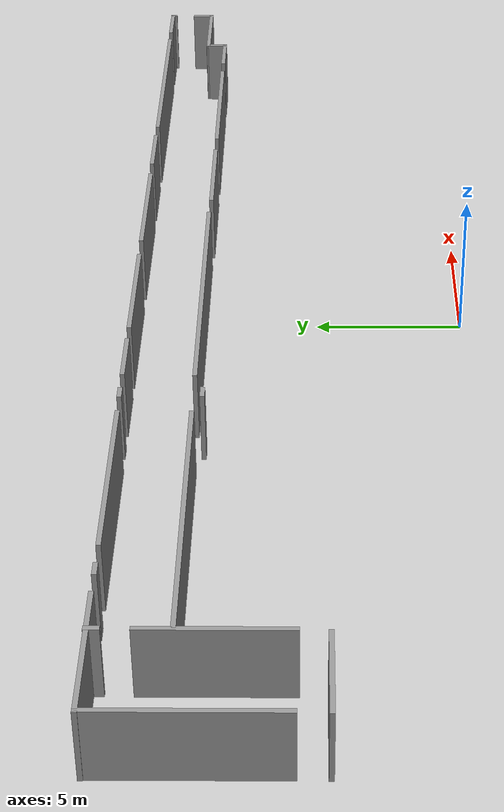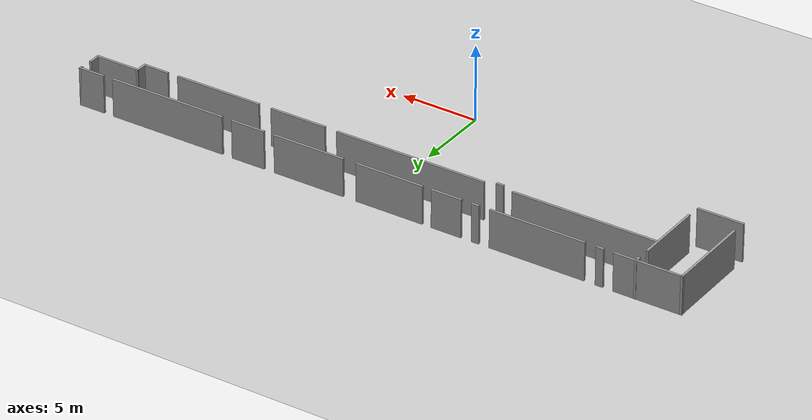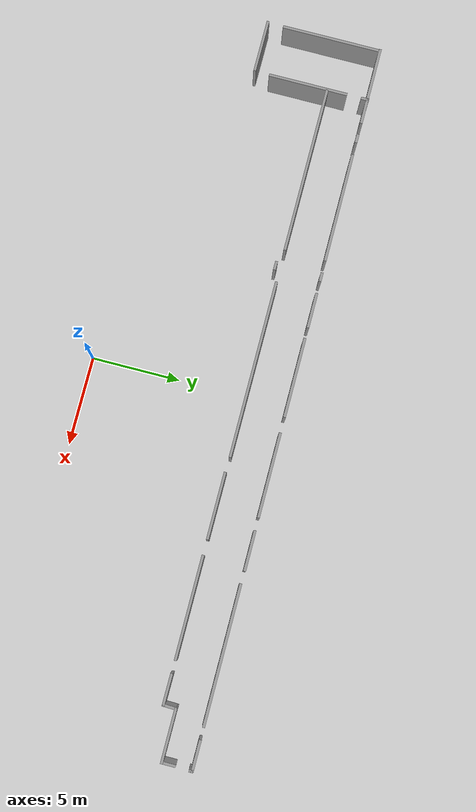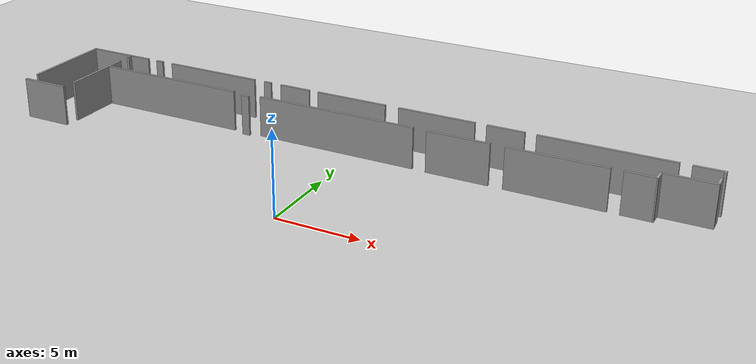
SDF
<sdf version='1.7'>
  <world name='default'>
    <light name='sun' type='directional'>
      <cast_shadows>1</cast_shadows>
      <pose>0 0 10 0 -0 0</pose>
      <diffuse>0.8 0.8 0.8 1</diffuse>
      <specular>0.2 0.2 0.2 1</specular>
      <attenuation>
        <range>1000</range>
        <constant>0.9</constant>
        <linear>0.01</linear>
        <quadratic>0.001</quadratic>
      </attenuation>
      <direction>-0.5 0.1 -0.9</direction>
      <spot>
        <inner_angle>0</inner_angle>
        <outer_angle>0</outer_angle>
        <falloff>0</falloff>
      </spot>
    </light>
    <model name='ground_plane'>
      <static>1</static>
      <link name='link'>
        <collision name='collision'>
          <geometry>
            <plane>
              <normal>0 0 1</normal>
              <size>100 100</size>
            </plane>
          </geometry>
          <surface>
            <friction>
              <ode>
                <mu>100</mu>
                <mu2>50</mu2>
              </ode>
              <torsional>
                <ode/>
              </torsional>
            </friction>
            <contact>
              <ode/>
            </contact>
            <bounce/>
          </surface>
          <max_contacts>10</max_contacts>
        </collision>
        <visual name='visual'>
          <cast_shadows>0</cast_shadows>
          <geometry>
            <plane>
              <normal>0 0 1</normal>
              <size>100 100</size>
            </plane>
          </geometry>
          <material>
            <script>
              <uri>file://media/materials/scripts/gazebo.material</uri>
              <name>Gazebo/Grey</name>
            </script>
          </material>
        </visual>
        <self_collide>0</self_collide>
        <enable_wind>0</enable_wind>
        <kinematic>0</kinematic>
      </link>
    </model>
    <gravity>0 0 -9.8</gravity>
    <magnetic_field>6e-06 2.3e-05 -4.2e-05</magnetic_field>
    <atmosphere type='adiabatic'/>
    <physics type='ode'>
      <max_step_size>0.001</max_step_size>
      <real_time_factor>1</real_time_factor>
      <real_time_update_rate>1000</real_time_update_rate>
    </physics>
    <scene>
      <ambient>0.4 0.4 0.4 1</ambient>
      <background>0.7 0.7 0.7 1</background>
      <shadows>1</shadows>
    </scene>
    <audio>
      <device>default</device>
    </audio>
    <wind/>
    <spherical_coordinates>
      <surface_model>EARTH_WGS84</surface_model>
      <latitude_deg>0</latitude_deg>
      <longitude_deg>0</longitude_deg>
      <elevation>0</elevation>
      <heading_deg>0</heading_deg>
    </spherical_coordinates>

    <include>
      <name>mundo_definitivo_piso1</name>
      <uri>model://mundo_definitivo_piso1</uri>
      <pose>0 0 0 0 0 0</pose>
    </include>

    <gui fullscreen='0'>
      <camera name='user_camera'>
        <pose>0 -34 38 0 0.8 1.5708</pose>
        <view_controller>orbit</view_controller>
        <projection_type>perspective</projection_type>
      </camera>
    </gui>
  </world>
</sdf>

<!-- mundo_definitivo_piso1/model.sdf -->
<sdf version='1.7'>
  <model name='mundo_definitivo_piso1'>
    <pose>0.752962 -0.165006 0 0 -0 0</pose>
    <link name='Wall_16'>
      <collision name='Wall_16_Collision'>
        <geometry>
          <box>
            <size>5.68966 0.15 2.5</size>
          </box>
        </geometry>
        <pose>0 0 1.25 0 -0 0</pose>
      </collision>
      <visual name='Wall_16_Visual'>
        <pose>0 0 1.25 0 -0 0</pose>
        <geometry>
          <box>
            <size>5.68966 0.15 2.5</size>
          </box>
        </geometry>
        <material>
          <script>
            <uri>file://media/materials/scripts/gazebo.material</uri>
            <name>Gazebo/Grey</name>
          </script>
          <ambient>1 1 1 1</ambient>
        </material>
        <meta>
          <layer>0</layer>
        </meta>
      </visual>
      <pose>-20.6294 8.43018 0 0 -0 -1.5708</pose>
    </link>
    <link name='Wall_18'>
      <collision name='Wall_18_Collision'>
        <geometry>
          <box>
            <size>4.5 0.15 2.5</size>
          </box>
        </geometry>
        <pose>0 0 1.25 0 -0 0</pose>
      </collision>
      <visual name='Wall_18_Visual'>
        <pose>0 0 1.25 0 -0 0</pose>
        <geometry>
          <box>
            <size>4.5 0.15 2.5</size>
          </box>
        </geometry>
        <material>
          <script>
            <uri>file://media/materials/scripts/gazebo.material</uri>
            <name>Gazebo/Grey</name>
          </script>
          <ambient>1 1 1 1</ambient>
        </material>
        <meta>
          <layer>0</layer>
        </meta>
      </visual>
      <pose>-17.6889 7.78714 0 0 -0 -1.5708</pose>
    </link>
    <link name='Wall_20'>
      <collision name='Wall_20_Collision'>
        <geometry>
          <box>
            <size>3 0.15 2.5</size>
          </box>
        </geometry>
        <pose>0 0 1.25 0 -0 0</pose>
      </collision>
      <visual name='Wall_20_Visual'>
        <pose>0 0 1.25 0 -0 0</pose>
        <geometry>
          <box>
            <size>3 0.15 2.5</size>
          </box>
        </geometry>
        <material>
          <script>
            <uri>file://media/materials/scripts/gazebo.material</uri>
            <name>Gazebo/Grey</name>
          </script>
          <ambient>1 1 1 1</ambient>
        </material>
        <meta>
          <layer>0</layer>
        </meta>
      </visual>
      <pose>-19.2206 4.69238 0 0 -0 0</pose>
    </link>
    <link name='Wall_24'>
      <collision name='Wall_24_Collision'>
        <geometry>
          <box>
            <size>0.459773 0.15 2.5</size>
          </box>
        </geometry>
        <pose>0 0 1.25 0 -0 0</pose>
      </collision>
      <visual name='Wall_24_Visual'>
        <pose>0 0 1.25 0 -0 0</pose>
        <geometry>
          <box>
            <size>0.459773 0.15 2.5</size>
          </box>
        </geometry>
        <material>
          <script>
            <uri>file://media/materials/scripts/gazebo.material</uri>
            <name>Gazebo/Grey</name>
          </script>
          <ambient>1 1 1 1</ambient>
        </material>
        <meta>
          <layer>0</layer>
        </meta>
      </visual>
      <pose>-17.6875 11.0652 0 0 -0 -1.5708</pose>
    </link>
    <link name='Wall_26'>
      <collision name='Wall_26_Collision'>
        <geometry>
          <box>
            <size>3.11204 0.15 2.5</size>
          </box>
        </geometry>
        <pose>0 0 1.25 0 -0 0</pose>
      </collision>
      <visual name='Wall_26_Visual'>
        <pose>0 0 1.25 0 -0 0</pose>
        <geometry>
          <box>
            <size>3.11204 0.15 2.5</size>
          </box>
        </geometry>
        <material>
          <script>
            <uri>file://media/materials/scripts/gazebo.material</uri>
            <name>Gazebo/Grey</name>
          </script>
          <ambient>1 1 1 1</ambient>
        </material>
        <meta>
          <layer>0</layer>
        </meta>
      </visual>
      <pose>-19.1685 11.2 0 0 -0 0</pose>
    </link>
    <link name='Wall_29'>
      <collision name='Wall_29_Collision'>
        <geometry>
          <box>
            <size>1.5 0.15 2.5</size>
          </box>
        </geometry>
        <pose>0 0 1.25 0 -0 0</pose>
      </collision>
      <visual name='Wall_29_Visual'>
        <pose>0 0 1.25 0 -0 0</pose>
        <geometry>
          <box>
            <size>1.5 0.15 2.5</size>
          </box>
        </geometry>
        <material>
          <script>
            <uri>file://media/materials/scripts/gazebo.material</uri>
            <name>Gazebo/Grey</name>
          </script>
          <ambient>1 1 1 1</ambient>
        </material>
        <meta>
          <layer>0</layer>
        </meta>
      </visual>
      <pose>-17.0125 11.2 0 0 -0 0</pose>
    </link>
    <link name='Wall_31'>
      <collision name='Wall_31_Collision'>
        <geometry>
          <box>
            <size>0.5 0.15 2.5</size>
          </box>
        </geometry>
        <pose>0 0 1.25 0 -0 0</pose>
      </collision>
      <visual name='Wall_31_Visual'>
        <pose>0 0 1.25 0 -0 0</pose>
        <geometry>
          <box>
            <size>0.5 0.15 2.5</size>
          </box>
        </geometry>
        <material>
          <script>
            <uri>file://media/materials/scripts/gazebo.material</uri>
            <name>Gazebo/Grey</name>
          </script>
          <ambient>1 1 1 1</ambient>
        </material>
        <meta>
          <layer>0</layer>
        </meta>
      </visual>
      <pose>-15.3618 11.1888 0 0 -0 0</pose>
    </link>
    <link name='Wall_33'>
      <collision name='Wall_33_Collision'>
        <geometry>
          <box>
            <size>6.25 0.15 2.5</size>
          </box>
        </geometry>
        <pose>0 0 1.25 0 -0 0</pose>
      </collision>
      <visual name='Wall_33_Visual'>
        <pose>0 0 1.25 0 -0 0</pose>
        <geometry>
          <box>
            <size>6.25 0.15 2.5</size>
          </box>
        </geometry>
        <material>
          <script>
            <uri>file://media/materials/scripts/gazebo.material</uri>
            <name>Gazebo/Grey</name>
          </script>
          <ambient>1 1 1 1</ambient>
        </material>
        <meta>
          <layer>0</layer>
        </meta>
      </visual>
      <pose>-11.275 11.1839 0 0 -0 0</pose>
    </link>
    <link name='Wall_35'>
      <collision name='Wall_35_Collision'>
        <geometry>
          <box>
            <size>0.5 0.15 2.5</size>
          </box>
        </geometry>
        <pose>0 0 1.25 0 -0 0</pose>
      </collision>
      <visual name='Wall_35_Visual'>
        <pose>0 0 1.25 0 -0 0</pose>
        <geometry>
          <box>
            <size>0.5 0.15 2.5</size>
          </box>
        </geometry>
        <material>
          <script>
            <uri>file://media/materials/scripts/gazebo.material</uri>
            <name>Gazebo/Grey</name>
          </script>
          <ambient>1 1 1 1</ambient>
        </material>
        <meta>
          <layer>0</layer>
        </meta>
      </visual>
      <pose>-7.21577 11.1936 0 0 -0 0</pose>
    </link>
    <link name='Wall_37'>
      <collision name='Wall_37_Collision'>
        <geometry>
          <box>
            <size>2 0.15 2.5</size>
          </box>
        </geometry>
        <pose>0 0 1.25 0 -0 0</pose>
      </collision>
      <visual name='Wall_37_Visual'>
        <pose>0 0 1.25 0 -0 0</pose>
        <geometry>
          <box>
            <size>2 0.15 2.5</size>
          </box>
        </geometry>
        <material>
          <script>
            <uri>file://media/materials/scripts/gazebo.material</uri>
            <name>Gazebo/Grey</name>
          </script>
          <ambient>1 1 1 1</ambient>
        </material>
        <meta>
          <layer>0</layer>
        </meta>
      </visual>
      <pose>-5.28271 11.1912 0 0 -0 0</pose>
    </link>
    <link name='Wall_39'>
      <collision name='Wall_39_Collision'>
        <geometry>
          <box>
            <size>4.5 0.15 2.5</size>
          </box>
        </geometry>
        <pose>0 0 1.25 0 -0 0</pose>
      </collision>
      <visual name='Wall_39_Visual'>
        <pose>0 0 1.25 0 -0 0</pose>
        <geometry>
          <box>
            <size>4.5 0.15 2.5</size>
          </box>
        </geometry>
        <material>
          <script>
            <uri>file://media/materials/scripts/gazebo.material</uri>
            <name>Gazebo/Grey</name>
          </script>
          <ambient>1 1 1 1</ambient>
        </material>
        <meta>
          <layer>0</layer>
        </meta>
      </visual>
      <pose>-1.43745 11.1862 0 0 -0 0</pose>
    </link>
    <link name='Wall_41'>
      <collision name='Wall_41_Collision'>
        <geometry>
          <box>
            <size>4.75 0.15 2.5</size>
          </box>
        </geometry>
        <pose>0 0 1.25 0 -0 0</pose>
      </collision>
      <visual name='Wall_41_Visual'>
        <pose>0 0 1.25 0 -0 0</pose>
        <geometry>
          <box>
            <size>4.75 0.15 2.5</size>
          </box>
        </geometry>
        <material>
          <script>
            <uri>file://media/materials/scripts/gazebo.material</uri>
            <name>Gazebo/Grey</name>
          </script>
          <ambient>1 1 1 1</ambient>
        </material>
        <meta>
          <layer>0</layer>
        </meta>
      </visual>
      <pose>4.05209 11.1862 0 0 -0 0</pose>
    </link>
    <link name='Wall_43'>
      <collision name='Wall_43_Collision'>
        <geometry>
          <box>
            <size>2.25 0.15 2.5</size>
          </box>
        </geometry>
        <pose>0 0 1.25 0 -0 0</pose>
      </collision>
      <visual name='Wall_43_Visual'>
        <pose>0 0 1.25 0 -0 0</pose>
        <geometry>
          <box>
            <size>2.25 0.15 2.5</size>
          </box>
        </geometry>
        <material>
          <script>
            <uri>file://media/materials/scripts/gazebo.material</uri>
            <name>Gazebo/Grey</name>
          </script>
          <ambient>1 1 1 1</ambient>
        </material>
        <meta>
          <layer>0</layer>
        </meta>
      </visual>
      <pose>8.2412 11.1912 0 0 -0 0</pose>
    </link>
    <link name='Wall_45'>
      <collision name='Wall_45_Collision'>
        <geometry>
          <box>
            <size>7.75 0.15 2.5</size>
          </box>
        </geometry>
        <pose>0 0 1.25 0 -0 0</pose>
      </collision>
      <visual name='Wall_45_Visual'>
        <pose>0 0 1.25 0 -0 0</pose>
        <geometry>
          <box>
            <size>7.75 0.15 2.5</size>
          </box>
        </geometry>
        <material>
          <script>
            <uri>file://media/materials/scripts/gazebo.material</uri>
            <name>Gazebo/Grey</name>
          </script>
          <ambient>1 1 1 1</ambient>
        </material>
        <meta>
          <layer>0</layer>
        </meta>
      </visual>
      <pose>13.9171 11.1713 0 0 -0 0</pose>
    </link>
    <link name='Wall_47'>
      <collision name='Wall_47_Collision'>
        <geometry>
          <box>
            <size>1.75 0.15 2.5</size>
          </box>
        </geometry>
        <pose>0 0 1.25 0 -0 0</pose>
      </collision>
      <visual name='Wall_47_Visual'>
        <pose>0 0 1.25 0 -0 0</pose>
        <geometry>
          <box>
            <size>1.75 0.15 2.5</size>
          </box>
        </geometry>
        <material>
          <script>
            <uri>file://media/materials/scripts/gazebo.material</uri>
            <name>Gazebo/Grey</name>
          </script>
          <ambient>1 1 1 1</ambient>
        </material>
        <meta>
          <layer>0</layer>
        </meta>
      </visual>
      <pose>19.3098 11.1778 0 0 -0 0</pose>
    </link>
    <link name='Wall_48'>
      <collision name='Wall_48_Collision'>
        <geometry>
          <box>
            <size>0.25 0.15 2.5</size>
          </box>
        </geometry>
        <pose>0 0 1.25 0 -0 0</pose>
      </collision>
      <visual name='Wall_48_Visual'>
        <pose>0 0 1.25 0 -0 0</pose>
        <geometry>
          <box>
            <size>0.25 0.15 2.5</size>
          </box>
        </geometry>
        <material>
          <script>
            <uri>file://media/materials/scripts/gazebo.material</uri>
            <name>Gazebo/Grey</name>
          </script>
          <ambient>1 1 1 1</ambient>
        </material>
        <meta>
          <layer>0</layer>
        </meta>
      </visual>
      <pose>20.1098 11.1278 0 0 -0 -1.5708</pose>
    </link>
    <link name='Wall_59'>
      <collision name='Wall_59_Collision'>
        <geometry>
          <box>
            <size>0.828261 0.15 2.5</size>
          </box>
        </geometry>
        <pose>0 0 1.25 0 -0 0</pose>
      </collision>
      <visual name='Wall_59_Visual'>
        <pose>0 0 1.25 0 -0 0</pose>
        <geometry>
          <box>
            <size>0.828261 0.15 2.5</size>
          </box>
        </geometry>
        <material>
          <script>
            <uri>file://media/materials/scripts/gazebo.material</uri>
            <name>Gazebo/Grey</name>
          </script>
          <ambient>1 1 1 1</ambient>
        </material>
        <meta>
          <layer>0</layer>
        </meta>
      </visual>
      <pose>20.075 9.86476 0 0 -0 -1.5708</pose>
    </link>
    <link name='Wall_65'>
      <collision name='Wall_65_Collision'>
        <geometry>
          <box>
            <size>1.76748 0.15 2.5</size>
          </box>
        </geometry>
        <pose>0 0 1.25 0 -0 0</pose>
      </collision>
      <visual name='Wall_65_Visual'>
        <pose>0 0 1.25 0 -0 0</pose>
        <geometry>
          <box>
            <size>1.76748 0.15 2.5</size>
          </box>
        </geometry>
        <material>
          <script>
            <uri>file://media/materials/scripts/gazebo.material</uri>
            <name>Gazebo/Grey</name>
          </script>
          <ambient>1 1 1 1</ambient>
        </material>
        <meta>
          <layer>0</layer>
        </meta>
      </visual>
      <pose>16.3989 8.83432 0 0 -0 3.13622</pose>
    </link>
    <link name='Wall_68'>
      <collision name='Wall_68_Collision'>
        <geometry>
          <box>
            <size>3 0.15 2.5</size>
          </box>
        </geometry>
        <pose>0 0 1.25 0 -0 0</pose>
      </collision>
      <visual name='Wall_68_Visual'>
        <pose>0 0 1.25 0 -0 0</pose>
        <geometry>
          <box>
            <size>3 0.15 2.5</size>
          </box>
        </geometry>
        <material>
          <script>
            <uri>file://media/materials/scripts/gazebo.material</uri>
            <name>Gazebo/Grey</name>
          </script>
          <ambient>1 1 1 1</ambient>
        </material>
        <meta>
          <layer>0</layer>
        </meta>
      </visual>
      <pose>18.65 9.51693 0 0 -0 3.14159</pose>
    </link>
    <link name='Wall_69'>
      <collision name='Wall_69_Collision'>
        <geometry>
          <box>
            <size>0.84587 0.15 2.5</size>
          </box>
        </geometry>
        <pose>0 0 1.25 0 -0 0</pose>
      </collision>
      <visual name='Wall_69_Visual'>
        <pose>0 0 1.25 0 -0 0</pose>
        <geometry>
          <box>
            <size>0.84587 0.15 2.5</size>
          </box>
        </geometry>
        <material>
          <script>
            <uri>file://media/materials/scripts/gazebo.material</uri>
            <name>Gazebo/Grey</name>
          </script>
          <ambient>1 1 1 1</ambient>
        </material>
        <meta>
          <layer>0</layer>
        </meta>
      </visual>
      <pose>17.2163 9.1778 0 0 -0 -1.59579</pose>
    </link>
    <link name='Wall_71'>
      <collision name='Wall_71_Collision'>
        <geometry>
          <box>
            <size>5.75 0.15 2.5</size>
          </box>
        </geometry>
        <pose>0 0 1.25 0 -0 0</pose>
      </collision>
      <visual name='Wall_71_Visual'>
        <pose>0 0 1.25 0 -0 0</pose>
        <geometry>
          <box>
            <size>5.75 0.15 2.5</size>
          </box>
        </geometry>
        <material>
          <script>
            <uri>file://media/materials/scripts/gazebo.material</uri>
            <name>Gazebo/Grey</name>
          </script>
          <ambient>1 1 1 1</ambient>
        </material>
        <meta>
          <layer>0</layer>
        </meta>
      </visual>
      <pose>11.9619 8.83867 0 0 -0 3.14159</pose>
    </link>
    <link name='Wall_73'>
      <collision name='Wall_73_Collision'>
        <geometry>
          <box>
            <size>3.75 0.15 2.5</size>
          </box>
        </geometry>
        <pose>0 0 1.25 0 -0 0</pose>
      </collision>
      <visual name='Wall_73_Visual'>
        <pose>0 0 1.25 0 -0 0</pose>
        <geometry>
          <box>
            <size>3.75 0.15 2.5</size>
          </box>
        </geometry>
        <material>
          <script>
            <uri>file://media/materials/scripts/gazebo.material</uri>
            <name>Gazebo/Grey</name>
          </script>
          <ambient>1 1 1 1</ambient>
        </material>
        <meta>
          <layer>0</layer>
        </meta>
      </visual>
      <pose>6.37063 8.84737 0 0 -0 3.14159</pose>
    </link>
    <link name='Wall_75'>
      <collision name='Wall_75_Collision'>
        <geometry>
          <box>
            <size>10 0.15 2.5</size>
          </box>
        </geometry>
        <pose>0 0 1.25 0 -0 0</pose>
      </collision>
      <visual name='Wall_75_Visual'>
        <pose>0 0 1.25 0 -0 0</pose>
        <geometry>
          <box>
            <size>10 0.15 2.5</size>
          </box>
        </geometry>
        <material>
          <script>
            <uri>file://media/materials/scripts/gazebo.material</uri>
            <name>Gazebo/Grey</name>
          </script>
          <ambient>1 1 1 1</ambient>
        </material>
        <meta>
          <layer>0</layer>
        </meta>
      </visual>
      <pose>-1.33077 8.89495 0 0 -0 3.14159</pose>
    </link>
    <link name='Wall_77'>
      <collision name='Wall_77_Collision'>
        <geometry>
          <box>
            <size>0.5 0.15 2.5</size>
          </box>
        </geometry>
        <pose>0 0 1.25 0 -0 0</pose>
      </collision>
      <visual name='Wall_77_Visual'>
        <pose>0 0 1.25 0 -0 0</pose>
        <geometry>
          <box>
            <size>0.5 0.15 2.5</size>
          </box>
        </geometry>
        <material>
          <script>
            <uri>file://media/materials/scripts/gazebo.material</uri>
            <name>Gazebo/Grey</name>
          </script>
          <ambient>1 1 1 1</ambient>
        </material>
        <meta>
          <layer>0</layer>
        </meta>
      </visual>
      <pose>-7.19724 8.61511 0 0 -0 3.14159</pose>
    </link>
    <link name='Wall_79'>
      <collision name='Wall_79_Collision'>
        <geometry>
          <box>
            <size>9.5 0.15 2.5</size>
          </box>
        </geometry>
        <pose>0 0 1.25 0 -0 0</pose>
      </collision>
      <visual name='Wall_79_Visual'>
        <pose>0 0 1.25 0 -0 0</pose>
        <geometry>
          <box>
            <size>9.5 0.15 2.5</size>
          </box>
        </geometry>
        <material>
          <script>
            <uri>file://media/materials/scripts/gazebo.material</uri>
            <name>Gazebo/Grey</name>
          </script>
          <ambient>1 1 1 1</ambient>
        </material>
        <meta>
          <layer>0</layer>
        </meta>
      </visual>
      <pose>-12.9215 8.89495 0 0 -0 3.14159</pose>
    </link>
    <static>1</static>
  </model>
</sdf>
